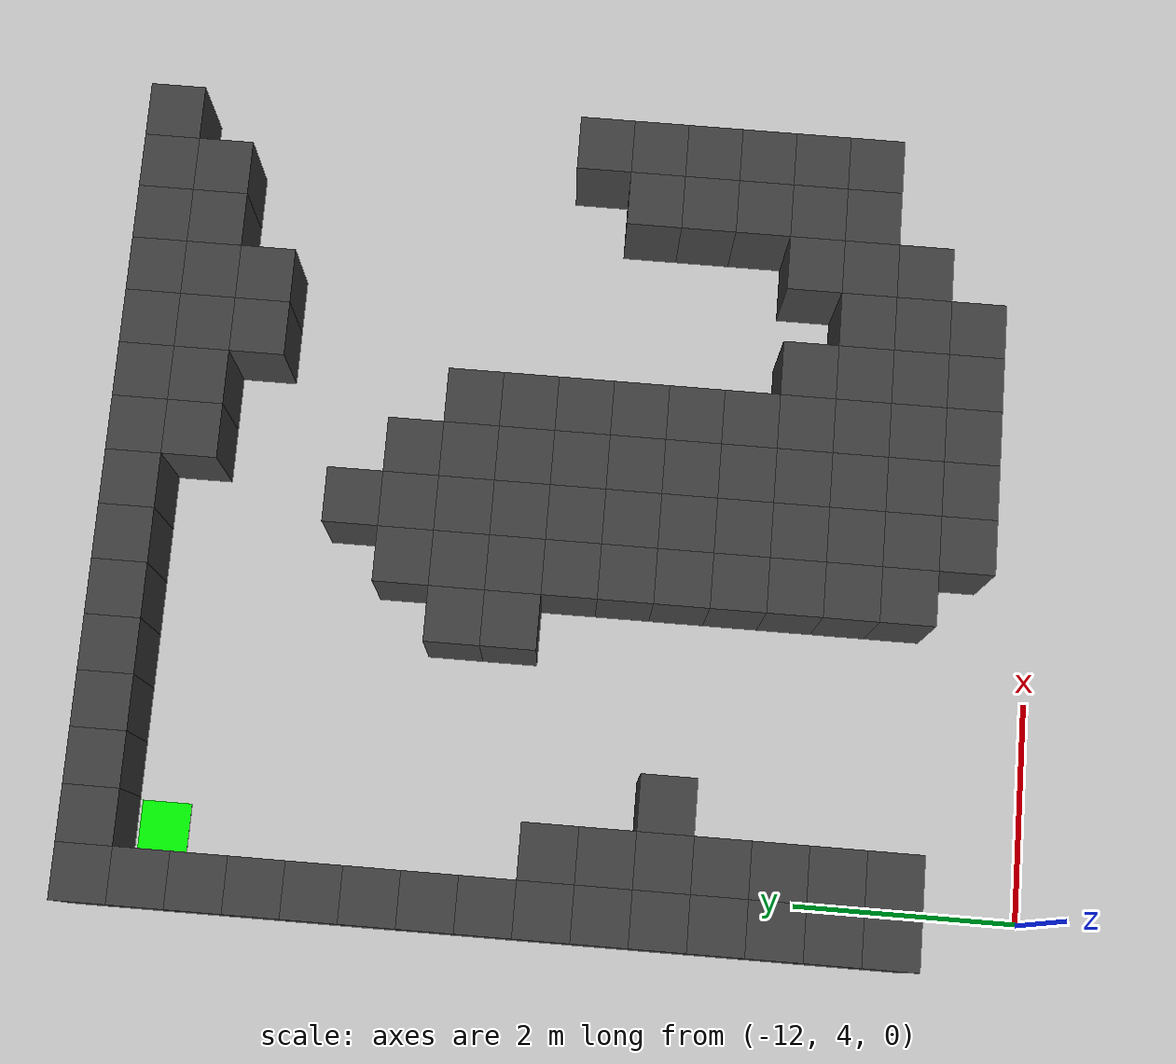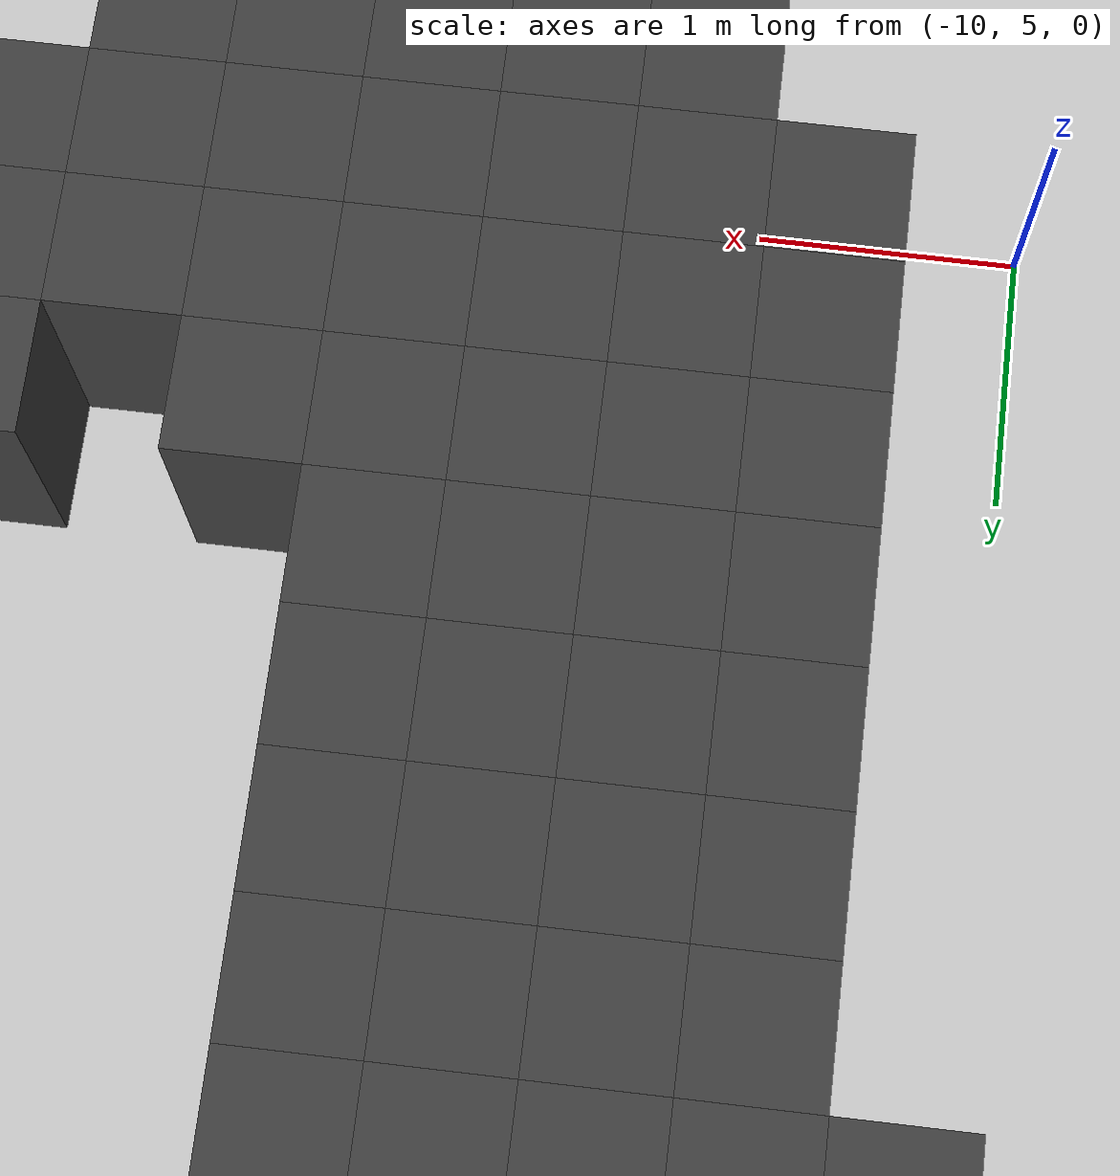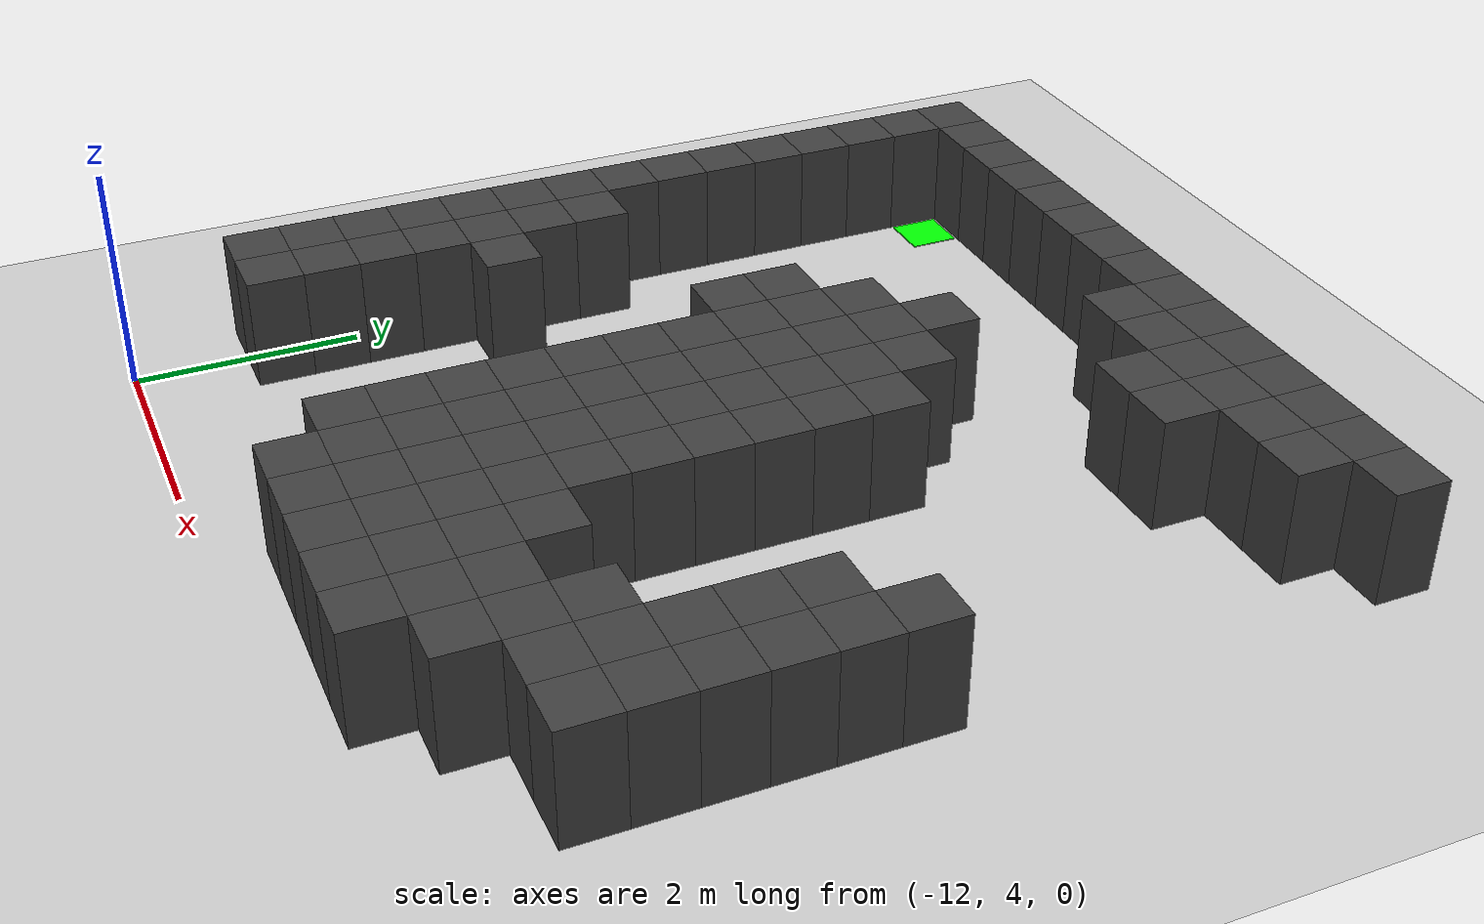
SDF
<sdf version="1.7">
 <world name="map_7219">
  <model name="ground_plane">
   <static>true</static>
   <link name="link">
    <collision name="collision">
     <geometry><plane><normal>0 0 1</normal><size>200 200</size></plane></geometry>
    </collision>
    <visual name="visual">
     <geometry><plane><normal>0 0 1</normal><size>200 200</size></plane></geometry>
     <material><ambient>0.8 0.8 0.8 1</ambient><diffuse>0.8 0.8 0.8 1</diffuse></material>
    </visual>
   </link>
  </model>
  <model name="maze_environment">
   <static>true</static>
   <link name="wall_0">
    <pose>-12.250 12.250 0.500 0 0 0</pose>
    <collision name="col"><geometry><box><size>0.5 0.5 1.0</size></box></geometry></collision>
    <visual name="vis">
     <geometry><box><size>0.5 0.5 1.0</size></box></geometry>
     <material><ambient>0.15 0.15 0.15 1</ambient><diffuse>0.25 0.25 0.25 1</diffuse></material>
    </visual>
   </link>
   <link name="wall_1">
    <pose>-11.750 12.250 0.500 0 0 0</pose>
    <collision name="col"><geometry><box><size>0.5 0.5 1.0</size></box></geometry></collision>
    <visual name="vis">
     <geometry><box><size>0.5 0.5 1.0</size></box></geometry>
     <material><ambient>0.15 0.15 0.15 1</ambient><diffuse>0.25 0.25 0.25 1</diffuse></material>
    </visual>
   </link>
   <link name="wall_2">
    <pose>-11.250 12.250 0.500 0 0 0</pose>
    <collision name="col"><geometry><box><size>0.5 0.5 1.0</size></box></geometry></collision>
    <visual name="vis">
     <geometry><box><size>0.5 0.5 1.0</size></box></geometry>
     <material><ambient>0.15 0.15 0.15 1</ambient><diffuse>0.25 0.25 0.25 1</diffuse></material>
    </visual>
   </link>
   <link name="wall_3">
    <pose>-10.750 12.250 0.500 0 0 0</pose>
    <collision name="col"><geometry><box><size>0.5 0.5 1.0</size></box></geometry></collision>
    <visual name="vis">
     <geometry><box><size>0.5 0.5 1.0</size></box></geometry>
     <material><ambient>0.15 0.15 0.15 1</ambient><diffuse>0.25 0.25 0.25 1</diffuse></material>
    </visual>
   </link>
   <link name="wall_4">
    <pose>-10.250 12.250 0.500 0 0 0</pose>
    <collision name="col"><geometry><box><size>0.5 0.5 1.0</size></box></geometry></collision>
    <visual name="vis">
     <geometry><box><size>0.5 0.5 1.0</size></box></geometry>
     <material><ambient>0.15 0.15 0.15 1</ambient><diffuse>0.25 0.25 0.25 1</diffuse></material>
    </visual>
   </link>
   <link name="wall_5">
    <pose>-9.750 12.250 0.500 0 0 0</pose>
    <collision name="col"><geometry><box><size>0.5 0.5 1.0</size></box></geometry></collision>
    <visual name="vis">
     <geometry><box><size>0.5 0.5 1.0</size></box></geometry>
     <material><ambient>0.15 0.15 0.15 1</ambient><diffuse>0.25 0.25 0.25 1</diffuse></material>
    </visual>
   </link>
   <link name="wall_6">
    <pose>-9.250 12.250 0.500 0 0 0</pose>
    <collision name="col"><geometry><box><size>0.5 0.5 1.0</size></box></geometry></collision>
    <visual name="vis">
     <geometry><box><size>0.5 0.5 1.0</size></box></geometry>
     <material><ambient>0.15 0.15 0.15 1</ambient><diffuse>0.25 0.25 0.25 1</diffuse></material>
    </visual>
   </link>
   <link name="wall_7">
    <pose>-8.750 12.250 0.500 0 0 0</pose>
    <collision name="col"><geometry><box><size>0.5 0.5 1.0</size></box></geometry></collision>
    <visual name="vis">
     <geometry><box><size>0.5 0.5 1.0</size></box></geometry>
     <material><ambient>0.15 0.15 0.15 1</ambient><diffuse>0.25 0.25 0.25 1</diffuse></material>
    </visual>
   </link>
   <link name="wall_8">
    <pose>-8.250 12.250 0.500 0 0 0</pose>
    <collision name="col"><geometry><box><size>0.5 0.5 1.0</size></box></geometry></collision>
    <visual name="vis">
     <geometry><box><size>0.5 0.5 1.0</size></box></geometry>
     <material><ambient>0.15 0.15 0.15 1</ambient><diffuse>0.25 0.25 0.25 1</diffuse></material>
    </visual>
   </link>
   <link name="wall_9">
    <pose>-7.750 12.250 0.500 0 0 0</pose>
    <collision name="col"><geometry><box><size>0.5 0.5 1.0</size></box></geometry></collision>
    <visual name="vis">
     <geometry><box><size>0.5 0.5 1.0</size></box></geometry>
     <material><ambient>0.15 0.15 0.15 1</ambient><diffuse>0.25 0.25 0.25 1</diffuse></material>
    </visual>
   </link>
   <link name="wall_10">
    <pose>-7.250 12.250 0.500 0 0 0</pose>
    <collision name="col"><geometry><box><size>0.5 0.5 1.0</size></box></geometry></collision>
    <visual name="vis">
     <geometry><box><size>0.5 0.5 1.0</size></box></geometry>
     <material><ambient>0.15 0.15 0.15 1</ambient><diffuse>0.25 0.25 0.25 1</diffuse></material>
    </visual>
   </link>
   <link name="wall_11">
    <pose>-6.750 12.250 0.500 0 0 0</pose>
    <collision name="col"><geometry><box><size>0.5 0.5 1.0</size></box></geometry></collision>
    <visual name="vis">
     <geometry><box><size>0.5 0.5 1.0</size></box></geometry>
     <material><ambient>0.15 0.15 0.15 1</ambient><diffuse>0.25 0.25 0.25 1</diffuse></material>
    </visual>
   </link>
   <link name="wall_12">
    <pose>-6.250 12.250 0.500 0 0 0</pose>
    <collision name="col"><geometry><box><size>0.5 0.5 1.0</size></box></geometry></collision>
    <visual name="vis">
     <geometry><box><size>0.5 0.5 1.0</size></box></geometry>
     <material><ambient>0.15 0.15 0.15 1</ambient><diffuse>0.25 0.25 0.25 1</diffuse></material>
    </visual>
   </link>
   <link name="wall_13">
    <pose>-5.750 12.250 0.500 0 0 0</pose>
    <collision name="col"><geometry><box><size>0.5 0.5 1.0</size></box></geometry></collision>
    <visual name="vis">
     <geometry><box><size>0.5 0.5 1.0</size></box></geometry>
     <material><ambient>0.15 0.15 0.15 1</ambient><diffuse>0.25 0.25 0.25 1</diffuse></material>
    </visual>
   </link>
   <link name="wall_14">
    <pose>-5.250 12.250 0.500 0 0 0</pose>
    <collision name="col"><geometry><box><size>0.5 0.5 1.0</size></box></geometry></collision>
    <visual name="vis">
     <geometry><box><size>0.5 0.5 1.0</size></box></geometry>
     <material><ambient>0.15 0.15 0.15 1</ambient><diffuse>0.25 0.25 0.25 1</diffuse></material>
    </visual>
   </link>
   <link name="wall_50">
    <pose>-12.250 11.750 0.500 0 0 0</pose>
    <collision name="col"><geometry><box><size>0.5 0.5 1.0</size></box></geometry></collision>
    <visual name="vis">
     <geometry><box><size>0.5 0.5 1.0</size></box></geometry>
     <material><ambient>0.15 0.15 0.15 1</ambient><diffuse>0.25 0.25 0.25 1</diffuse></material>
    </visual>
   </link>
   <link name="wall_51">
    <pose>-8.250 11.750 0.500 0 0 0</pose>
    <collision name="col"><geometry><box><size>0.5 0.5 1.0</size></box></geometry></collision>
    <visual name="vis">
     <geometry><box><size>0.5 0.5 1.0</size></box></geometry>
     <material><ambient>0.15 0.15 0.15 1</ambient><diffuse>0.25 0.25 0.25 1</diffuse></material>
    </visual>
   </link>
   <link name="wall_52">
    <pose>-7.750 11.750 0.500 0 0 0</pose>
    <collision name="col"><geometry><box><size>0.5 0.5 1.0</size></box></geometry></collision>
    <visual name="vis">
     <geometry><box><size>0.5 0.5 1.0</size></box></geometry>
     <material><ambient>0.15 0.15 0.15 1</ambient><diffuse>0.25 0.25 0.25 1</diffuse></material>
    </visual>
   </link>
   <link name="wall_53">
    <pose>-7.250 11.750 0.500 0 0 0</pose>
    <collision name="col"><geometry><box><size>0.5 0.5 1.0</size></box></geometry></collision>
    <visual name="vis">
     <geometry><box><size>0.5 0.5 1.0</size></box></geometry>
     <material><ambient>0.15 0.15 0.15 1</ambient><diffuse>0.25 0.25 0.25 1</diffuse></material>
    </visual>
   </link>
   <link name="wall_54">
    <pose>-6.750 11.750 0.500 0 0 0</pose>
    <collision name="col"><geometry><box><size>0.5 0.5 1.0</size></box></geometry></collision>
    <visual name="vis">
     <geometry><box><size>0.5 0.5 1.0</size></box></geometry>
     <material><ambient>0.15 0.15 0.15 1</ambient><diffuse>0.25 0.25 0.25 1</diffuse></material>
    </visual>
   </link>
   <link name="wall_55">
    <pose>-6.250 11.750 0.500 0 0 0</pose>
    <collision name="col"><geometry><box><size>0.5 0.5 1.0</size></box></geometry></collision>
    <visual name="vis">
     <geometry><box><size>0.5 0.5 1.0</size></box></geometry>
     <material><ambient>0.15 0.15 0.15 1</ambient><diffuse>0.25 0.25 0.25 1</diffuse></material>
    </visual>
   </link>
   <link name="wall_56">
    <pose>-5.750 11.750 0.500 0 0 0</pose>
    <collision name="col"><geometry><box><size>0.5 0.5 1.0</size></box></geometry></collision>
    <visual name="vis">
     <geometry><box><size>0.5 0.5 1.0</size></box></geometry>
     <material><ambient>0.15 0.15 0.15 1</ambient><diffuse>0.25 0.25 0.25 1</diffuse></material>
    </visual>
   </link>
   <link name="wall_70">
    <pose>-12.250 11.250 0.500 0 0 0</pose>
    <collision name="col"><geometry><box><size>0.5 0.5 1.0</size></box></geometry></collision>
    <visual name="vis">
     <geometry><box><size>0.5 0.5 1.0</size></box></geometry>
     <material><ambient>0.15 0.15 0.15 1</ambient><diffuse>0.25 0.25 0.25 1</diffuse></material>
    </visual>
   </link>
   <link name="wall_71">
    <pose>-7.250 11.250 0.500 0 0 0</pose>
    <collision name="col"><geometry><box><size>0.5 0.5 1.0</size></box></geometry></collision>
    <visual name="vis">
     <geometry><box><size>0.5 0.5 1.0</size></box></geometry>
     <material><ambient>0.15 0.15 0.15 1</ambient><diffuse>0.25 0.25 0.25 1</diffuse></material>
    </visual>
   </link>
   <link name="wall_72">
    <pose>-6.750 11.250 0.500 0 0 0</pose>
    <collision name="col"><geometry><box><size>0.5 0.5 1.0</size></box></geometry></collision>
    <visual name="vis">
     <geometry><box><size>0.5 0.5 1.0</size></box></geometry>
     <material><ambient>0.15 0.15 0.15 1</ambient><diffuse>0.25 0.25 0.25 1</diffuse></material>
    </visual>
   </link>
   <link name="wall_76">
    <pose>-12.250 10.750 0.500 0 0 0</pose>
    <collision name="col"><geometry><box><size>0.5 0.5 1.0</size></box></geometry></collision>
    <visual name="vis">
     <geometry><box><size>0.5 0.5 1.0</size></box></geometry>
     <material><ambient>0.15 0.15 0.15 1</ambient><diffuse>0.25 0.25 0.25 1</diffuse></material>
    </visual>
   </link>
   <link name="wall_78">
    <pose>-12.250 10.250 0.500 0 0 0</pose>
    <collision name="col"><geometry><box><size>0.5 0.5 1.0</size></box></geometry></collision>
    <visual name="vis">
     <geometry><box><size>0.5 0.5 1.0</size></box></geometry>
     <material><ambient>0.15 0.15 0.15 1</ambient><diffuse>0.25 0.25 0.25 1</diffuse></material>
    </visual>
   </link>
   <link name="wall_79">
    <pose>-8.750 10.250 0.500 0 0 0</pose>
    <collision name="col"><geometry><box><size>0.5 0.5 1.0</size></box></geometry></collision>
    <visual name="vis">
     <geometry><box><size>0.5 0.5 1.0</size></box></geometry>
     <material><ambient>0.15 0.15 0.15 1</ambient><diffuse>0.25 0.25 0.25 1</diffuse></material>
    </visual>
   </link>
   <link name="wall_81">
    <pose>-12.250 9.750 0.500 0 0 0</pose>
    <collision name="col"><geometry><box><size>0.5 0.5 1.0</size></box></geometry></collision>
    <visual name="vis">
     <geometry><box><size>0.5 0.5 1.0</size></box></geometry>
     <material><ambient>0.15 0.15 0.15 1</ambient><diffuse>0.25 0.25 0.25 1</diffuse></material>
    </visual>
   </link>
   <link name="wall_82">
    <pose>-9.250 9.750 0.500 0 0 0</pose>
    <collision name="col"><geometry><box><size>0.5 0.5 1.0</size></box></geometry></collision>
    <visual name="vis">
     <geometry><box><size>0.5 0.5 1.0</size></box></geometry>
     <material><ambient>0.15 0.15 0.15 1</ambient><diffuse>0.25 0.25 0.25 1</diffuse></material>
    </visual>
   </link>
   <link name="wall_83">
    <pose>-8.750 9.750 0.500 0 0 0</pose>
    <collision name="col"><geometry><box><size>0.5 0.5 1.0</size></box></geometry></collision>
    <visual name="vis">
     <geometry><box><size>0.5 0.5 1.0</size></box></geometry>
     <material><ambient>0.15 0.15 0.15 1</ambient><diffuse>0.25 0.25 0.25 1</diffuse></material>
    </visual>
   </link>
   <link name="wall_84">
    <pose>-8.250 9.750 0.500 0 0 0</pose>
    <collision name="col"><geometry><box><size>0.5 0.5 1.0</size></box></geometry></collision>
    <visual name="vis">
     <geometry><box><size>0.5 0.5 1.0</size></box></geometry>
     <material><ambient>0.15 0.15 0.15 1</ambient><diffuse>0.25 0.25 0.25 1</diffuse></material>
    </visual>
   </link>
   <link name="wall_87">
    <pose>-12.250 9.250 0.500 0 0 0</pose>
    <collision name="col"><geometry><box><size>0.5 0.5 1.0</size></box></geometry></collision>
    <visual name="vis">
     <geometry><box><size>0.5 0.5 1.0</size></box></geometry>
     <material><ambient>0.15 0.15 0.15 1</ambient><diffuse>0.25 0.25 0.25 1</diffuse></material>
    </visual>
   </link>
   <link name="wall_88">
    <pose>-9.750 9.250 0.500 0 0 0</pose>
    <collision name="col"><geometry><box><size>0.5 0.5 1.0</size></box></geometry></collision>
    <visual name="vis">
     <geometry><box><size>0.5 0.5 1.0</size></box></geometry>
     <material><ambient>0.15 0.15 0.15 1</ambient><diffuse>0.25 0.25 0.25 1</diffuse></material>
    </visual>
   </link>
   <link name="wall_89">
    <pose>-9.250 9.250 0.500 0 0 0</pose>
    <collision name="col"><geometry><box><size>0.5 0.5 1.0</size></box></geometry></collision>
    <visual name="vis">
     <geometry><box><size>0.5 0.5 1.0</size></box></geometry>
     <material><ambient>0.15 0.15 0.15 1</ambient><diffuse>0.25 0.25 0.25 1</diffuse></material>
    </visual>
   </link>
   <link name="wall_90">
    <pose>-8.750 9.250 0.500 0 0 0</pose>
    <collision name="col"><geometry><box><size>0.5 0.5 1.0</size></box></geometry></collision>
    <visual name="vis">
     <geometry><box><size>0.5 0.5 1.0</size></box></geometry>
     <material><ambient>0.15 0.15 0.15 1</ambient><diffuse>0.25 0.25 0.25 1</diffuse></material>
    </visual>
   </link>
   <link name="wall_91">
    <pose>-8.250 9.250 0.500 0 0 0</pose>
    <collision name="col"><geometry><box><size>0.5 0.5 1.0</size></box></geometry></collision>
    <visual name="vis">
     <geometry><box><size>0.5 0.5 1.0</size></box></geometry>
     <material><ambient>0.15 0.15 0.15 1</ambient><diffuse>0.25 0.25 0.25 1</diffuse></material>
    </visual>
   </link>
   <link name="wall_92">
    <pose>-7.750 9.250 0.500 0 0 0</pose>
    <collision name="col"><geometry><box><size>0.5 0.5 1.0</size></box></geometry></collision>
    <visual name="vis">
     <geometry><box><size>0.5 0.5 1.0</size></box></geometry>
     <material><ambient>0.15 0.15 0.15 1</ambient><diffuse>0.25 0.25 0.25 1</diffuse></material>
    </visual>
   </link>
   <link name="wall_96">
    <pose>-12.250 8.750 0.500 0 0 0</pose>
    <collision name="col"><geometry><box><size>0.5 0.5 1.0</size></box></geometry></collision>
    <visual name="vis">
     <geometry><box><size>0.5 0.5 1.0</size></box></geometry>
     <material><ambient>0.15 0.15 0.15 1</ambient><diffuse>0.25 0.25 0.25 1</diffuse></material>
    </visual>
   </link>
   <link name="wall_97">
    <pose>-9.750 8.750 0.500 0 0 0</pose>
    <collision name="col"><geometry><box><size>0.5 0.5 1.0</size></box></geometry></collision>
    <visual name="vis">
     <geometry><box><size>0.5 0.5 1.0</size></box></geometry>
     <material><ambient>0.15 0.15 0.15 1</ambient><diffuse>0.25 0.25 0.25 1</diffuse></material>
    </visual>
   </link>
   <link name="wall_98">
    <pose>-9.250 8.750 0.500 0 0 0</pose>
    <collision name="col"><geometry><box><size>0.5 0.5 1.0</size></box></geometry></collision>
    <visual name="vis">
     <geometry><box><size>0.5 0.5 1.0</size></box></geometry>
     <material><ambient>0.15 0.15 0.15 1</ambient><diffuse>0.25 0.25 0.25 1</diffuse></material>
    </visual>
   </link>
   <link name="wall_99">
    <pose>-8.750 8.750 0.500 0 0 0</pose>
    <collision name="col"><geometry><box><size>0.5 0.5 1.0</size></box></geometry></collision>
    <visual name="vis">
     <geometry><box><size>0.5 0.5 1.0</size></box></geometry>
     <material><ambient>0.15 0.15 0.15 1</ambient><diffuse>0.25 0.25 0.25 1</diffuse></material>
    </visual>
   </link>
   <link name="wall_100">
    <pose>-8.250 8.750 0.500 0 0 0</pose>
    <collision name="col"><geometry><box><size>0.5 0.5 1.0</size></box></geometry></collision>
    <visual name="vis">
     <geometry><box><size>0.5 0.5 1.0</size></box></geometry>
     <material><ambient>0.15 0.15 0.15 1</ambient><diffuse>0.25 0.25 0.25 1</diffuse></material>
    </visual>
   </link>
   <link name="wall_101">
    <pose>-7.750 8.750 0.500 0 0 0</pose>
    <collision name="col"><geometry><box><size>0.5 0.5 1.0</size></box></geometry></collision>
    <visual name="vis">
     <geometry><box><size>0.5 0.5 1.0</size></box></geometry>
     <material><ambient>0.15 0.15 0.15 1</ambient><diffuse>0.25 0.25 0.25 1</diffuse></material>
    </visual>
   </link>
   <link name="wall_107">
    <pose>-12.250 8.250 0.500 0 0 0</pose>
    <collision name="col"><geometry><box><size>0.5 0.5 1.0</size></box></geometry></collision>
    <visual name="vis">
     <geometry><box><size>0.5 0.5 1.0</size></box></geometry>
     <material><ambient>0.15 0.15 0.15 1</ambient><diffuse>0.25 0.25 0.25 1</diffuse></material>
    </visual>
   </link>
   <link name="wall_108">
    <pose>-11.750 8.250 0.500 0 0 0</pose>
    <collision name="col"><geometry><box><size>0.5 0.5 1.0</size></box></geometry></collision>
    <visual name="vis">
     <geometry><box><size>0.5 0.5 1.0</size></box></geometry>
     <material><ambient>0.15 0.15 0.15 1</ambient><diffuse>0.25 0.25 0.25 1</diffuse></material>
    </visual>
   </link>
   <link name="wall_109">
    <pose>-9.250 8.250 0.500 0 0 0</pose>
    <collision name="col"><geometry><box><size>0.5 0.5 1.0</size></box></geometry></collision>
    <visual name="vis">
     <geometry><box><size>0.5 0.5 1.0</size></box></geometry>
     <material><ambient>0.15 0.15 0.15 1</ambient><diffuse>0.25 0.25 0.25 1</diffuse></material>
    </visual>
   </link>
   <link name="wall_110">
    <pose>-8.750 8.250 0.500 0 0 0</pose>
    <collision name="col"><geometry><box><size>0.5 0.5 1.0</size></box></geometry></collision>
    <visual name="vis">
     <geometry><box><size>0.5 0.5 1.0</size></box></geometry>
     <material><ambient>0.15 0.15 0.15 1</ambient><diffuse>0.25 0.25 0.25 1</diffuse></material>
    </visual>
   </link>
   <link name="wall_111">
    <pose>-8.250 8.250 0.500 0 0 0</pose>
    <collision name="col"><geometry><box><size>0.5 0.5 1.0</size></box></geometry></collision>
    <visual name="vis">
     <geometry><box><size>0.5 0.5 1.0</size></box></geometry>
     <material><ambient>0.15 0.15 0.15 1</ambient><diffuse>0.25 0.25 0.25 1</diffuse></material>
    </visual>
   </link>
   <link name="wall_112">
    <pose>-7.750 8.250 0.500 0 0 0</pose>
    <collision name="col"><geometry><box><size>0.5 0.5 1.0</size></box></geometry></collision>
    <visual name="vis">
     <geometry><box><size>0.5 0.5 1.0</size></box></geometry>
     <material><ambient>0.15 0.15 0.15 1</ambient><diffuse>0.25 0.25 0.25 1</diffuse></material>
    </visual>
   </link>
   <link name="wall_113">
    <pose>-5.250 8.250 0.500 0 0 0</pose>
    <collision name="col"><geometry><box><size>0.5 0.5 1.0</size></box></geometry></collision>
    <visual name="vis">
     <geometry><box><size>0.5 0.5 1.0</size></box></geometry>
     <material><ambient>0.15 0.15 0.15 1</ambient><diffuse>0.25 0.25 0.25 1</diffuse></material>
    </visual>
   </link>
   <link name="wall_119">
    <pose>-12.250 7.750 0.500 0 0 0</pose>
    <collision name="col"><geometry><box><size>0.5 0.5 1.0</size></box></geometry></collision>
    <visual name="vis">
     <geometry><box><size>0.5 0.5 1.0</size></box></geometry>
     <material><ambient>0.15 0.15 0.15 1</ambient><diffuse>0.25 0.25 0.25 1</diffuse></material>
    </visual>
   </link>
   <link name="wall_120">
    <pose>-11.750 7.750 0.500 0 0 0</pose>
    <collision name="col"><geometry><box><size>0.5 0.5 1.0</size></box></geometry></collision>
    <visual name="vis">
     <geometry><box><size>0.5 0.5 1.0</size></box></geometry>
     <material><ambient>0.15 0.15 0.15 1</ambient><diffuse>0.25 0.25 0.25 1</diffuse></material>
    </visual>
   </link>
   <link name="wall_121">
    <pose>-9.250 7.750 0.500 0 0 0</pose>
    <collision name="col"><geometry><box><size>0.5 0.5 1.0</size></box></geometry></collision>
    <visual name="vis">
     <geometry><box><size>0.5 0.5 1.0</size></box></geometry>
     <material><ambient>0.15 0.15 0.15 1</ambient><diffuse>0.25 0.25 0.25 1</diffuse></material>
    </visual>
   </link>
   <link name="wall_122">
    <pose>-8.750 7.750 0.500 0 0 0</pose>
    <collision name="col"><geometry><box><size>0.5 0.5 1.0</size></box></geometry></collision>
    <visual name="vis">
     <geometry><box><size>0.5 0.5 1.0</size></box></geometry>
     <material><ambient>0.15 0.15 0.15 1</ambient><diffuse>0.25 0.25 0.25 1</diffuse></material>
    </visual>
   </link>
   <link name="wall_123">
    <pose>-8.250 7.750 0.500 0 0 0</pose>
    <collision name="col"><geometry><box><size>0.5 0.5 1.0</size></box></geometry></collision>
    <visual name="vis">
     <geometry><box><size>0.5 0.5 1.0</size></box></geometry>
     <material><ambient>0.15 0.15 0.15 1</ambient><diffuse>0.25 0.25 0.25 1</diffuse></material>
    </visual>
   </link>
   <link name="wall_124">
    <pose>-7.750 7.750 0.500 0 0 0</pose>
    <collision name="col"><geometry><box><size>0.5 0.5 1.0</size></box></geometry></collision>
    <visual name="vis">
     <geometry><box><size>0.5 0.5 1.0</size></box></geometry>
     <material><ambient>0.15 0.15 0.15 1</ambient><diffuse>0.25 0.25 0.25 1</diffuse></material>
    </visual>
   </link>
   <link name="wall_125">
    <pose>-5.750 7.750 0.500 0 0 0</pose>
    <collision name="col"><geometry><box><size>0.5 0.5 1.0</size></box></geometry></collision>
    <visual name="vis">
     <geometry><box><size>0.5 0.5 1.0</size></box></geometry>
     <material><ambient>0.15 0.15 0.15 1</ambient><diffuse>0.25 0.25 0.25 1</diffuse></material>
    </visual>
   </link>
   <link name="wall_126">
    <pose>-5.250 7.750 0.500 0 0 0</pose>
    <collision name="col"><geometry><box><size>0.5 0.5 1.0</size></box></geometry></collision>
    <visual name="vis">
     <geometry><box><size>0.5 0.5 1.0</size></box></geometry>
     <material><ambient>0.15 0.15 0.15 1</ambient><diffuse>0.25 0.25 0.25 1</diffuse></material>
    </visual>
   </link>
   <link name="wall_130">
    <pose>-12.250 7.250 0.500 0 0 0</pose>
    <collision name="col"><geometry><box><size>0.5 0.5 1.0</size></box></geometry></collision>
    <visual name="vis">
     <geometry><box><size>0.5 0.5 1.0</size></box></geometry>
     <material><ambient>0.15 0.15 0.15 1</ambient><diffuse>0.25 0.25 0.25 1</diffuse></material>
    </visual>
   </link>
   <link name="wall_131">
    <pose>-11.750 7.250 0.500 0 0 0</pose>
    <collision name="col"><geometry><box><size>0.5 0.5 1.0</size></box></geometry></collision>
    <visual name="vis">
     <geometry><box><size>0.5 0.5 1.0</size></box></geometry>
     <material><ambient>0.15 0.15 0.15 1</ambient><diffuse>0.25 0.25 0.25 1</diffuse></material>
    </visual>
   </link>
   <link name="wall_132">
    <pose>-11.250 7.250 0.500 0 0 0</pose>
    <collision name="col"><geometry><box><size>0.5 0.5 1.0</size></box></geometry></collision>
    <visual name="vis">
     <geometry><box><size>0.5 0.5 1.0</size></box></geometry>
     <material><ambient>0.15 0.15 0.15 1</ambient><diffuse>0.25 0.25 0.25 1</diffuse></material>
    </visual>
   </link>
   <link name="wall_133">
    <pose>-9.250 7.250 0.500 0 0 0</pose>
    <collision name="col"><geometry><box><size>0.5 0.5 1.0</size></box></geometry></collision>
    <visual name="vis">
     <geometry><box><size>0.5 0.5 1.0</size></box></geometry>
     <material><ambient>0.15 0.15 0.15 1</ambient><diffuse>0.25 0.25 0.25 1</diffuse></material>
    </visual>
   </link>
   <link name="wall_134">
    <pose>-8.750 7.250 0.500 0 0 0</pose>
    <collision name="col"><geometry><box><size>0.5 0.5 1.0</size></box></geometry></collision>
    <visual name="vis">
     <geometry><box><size>0.5 0.5 1.0</size></box></geometry>
     <material><ambient>0.15 0.15 0.15 1</ambient><diffuse>0.25 0.25 0.25 1</diffuse></material>
    </visual>
   </link>
   <link name="wall_135">
    <pose>-8.250 7.250 0.500 0 0 0</pose>
    <collision name="col"><geometry><box><size>0.5 0.5 1.0</size></box></geometry></collision>
    <visual name="vis">
     <geometry><box><size>0.5 0.5 1.0</size></box></geometry>
     <material><ambient>0.15 0.15 0.15 1</ambient><diffuse>0.25 0.25 0.25 1</diffuse></material>
    </visual>
   </link>
   <link name="wall_136">
    <pose>-7.750 7.250 0.500 0 0 0</pose>
    <collision name="col"><geometry><box><size>0.5 0.5 1.0</size></box></geometry></collision>
    <visual name="vis">
     <geometry><box><size>0.5 0.5 1.0</size></box></geometry>
     <material><ambient>0.15 0.15 0.15 1</ambient><diffuse>0.25 0.25 0.25 1</diffuse></material>
    </visual>
   </link>
   <link name="wall_137">
    <pose>-5.750 7.250 0.500 0 0 0</pose>
    <collision name="col"><geometry><box><size>0.5 0.5 1.0</size></box></geometry></collision>
    <visual name="vis">
     <geometry><box><size>0.5 0.5 1.0</size></box></geometry>
     <material><ambient>0.15 0.15 0.15 1</ambient><diffuse>0.25 0.25 0.25 1</diffuse></material>
    </visual>
   </link>
   <link name="wall_138">
    <pose>-5.250 7.250 0.500 0 0 0</pose>
    <collision name="col"><geometry><box><size>0.5 0.5 1.0</size></box></geometry></collision>
    <visual name="vis">
     <geometry><box><size>0.5 0.5 1.0</size></box></geometry>
     <material><ambient>0.15 0.15 0.15 1</ambient><diffuse>0.25 0.25 0.25 1</diffuse></material>
    </visual>
   </link>
   <link name="wall_142">
    <pose>-12.250 6.750 0.500 0 0 0</pose>
    <collision name="col"><geometry><box><size>0.5 0.5 1.0</size></box></geometry></collision>
    <visual name="vis">
     <geometry><box><size>0.5 0.5 1.0</size></box></geometry>
     <material><ambient>0.15 0.15 0.15 1</ambient><diffuse>0.25 0.25 0.25 1</diffuse></material>
    </visual>
   </link>
   <link name="wall_143">
    <pose>-11.750 6.750 0.500 0 0 0</pose>
    <collision name="col"><geometry><box><size>0.5 0.5 1.0</size></box></geometry></collision>
    <visual name="vis">
     <geometry><box><size>0.5 0.5 1.0</size></box></geometry>
     <material><ambient>0.15 0.15 0.15 1</ambient><diffuse>0.25 0.25 0.25 1</diffuse></material>
    </visual>
   </link>
   <link name="wall_144">
    <pose>-9.250 6.750 0.500 0 0 0</pose>
    <collision name="col"><geometry><box><size>0.5 0.5 1.0</size></box></geometry></collision>
    <visual name="vis">
     <geometry><box><size>0.5 0.5 1.0</size></box></geometry>
     <material><ambient>0.15 0.15 0.15 1</ambient><diffuse>0.25 0.25 0.25 1</diffuse></material>
    </visual>
   </link>
   <link name="wall_145">
    <pose>-8.750 6.750 0.500 0 0 0</pose>
    <collision name="col"><geometry><box><size>0.5 0.5 1.0</size></box></geometry></collision>
    <visual name="vis">
     <geometry><box><size>0.5 0.5 1.0</size></box></geometry>
     <material><ambient>0.15 0.15 0.15 1</ambient><diffuse>0.25 0.25 0.25 1</diffuse></material>
    </visual>
   </link>
   <link name="wall_146">
    <pose>-8.250 6.750 0.500 0 0 0</pose>
    <collision name="col"><geometry><box><size>0.5 0.5 1.0</size></box></geometry></collision>
    <visual name="vis">
     <geometry><box><size>0.5 0.5 1.0</size></box></geometry>
     <material><ambient>0.15 0.15 0.15 1</ambient><diffuse>0.25 0.25 0.25 1</diffuse></material>
    </visual>
   </link>
   <link name="wall_147">
    <pose>-7.750 6.750 0.500 0 0 0</pose>
    <collision name="col"><geometry><box><size>0.5 0.5 1.0</size></box></geometry></collision>
    <visual name="vis">
     <geometry><box><size>0.5 0.5 1.0</size></box></geometry>
     <material><ambient>0.15 0.15 0.15 1</ambient><diffuse>0.25 0.25 0.25 1</diffuse></material>
    </visual>
   </link>
   <link name="wall_148">
    <pose>-5.750 6.750 0.500 0 0 0</pose>
    <collision name="col"><geometry><box><size>0.5 0.5 1.0</size></box></geometry></collision>
    <visual name="vis">
     <geometry><box><size>0.5 0.5 1.0</size></box></geometry>
     <material><ambient>0.15 0.15 0.15 1</ambient><diffuse>0.25 0.25 0.25 1</diffuse></material>
    </visual>
   </link>
   <link name="wall_149">
    <pose>-5.250 6.750 0.500 0 0 0</pose>
    <collision name="col"><geometry><box><size>0.5 0.5 1.0</size></box></geometry></collision>
    <visual name="vis">
     <geometry><box><size>0.5 0.5 1.0</size></box></geometry>
     <material><ambient>0.15 0.15 0.15 1</ambient><diffuse>0.25 0.25 0.25 1</diffuse></material>
    </visual>
   </link>
   <link name="wall_153">
    <pose>-12.250 6.250 0.500 0 0 0</pose>
    <collision name="col"><geometry><box><size>0.5 0.5 1.0</size></box></geometry></collision>
    <visual name="vis">
     <geometry><box><size>0.5 0.5 1.0</size></box></geometry>
     <material><ambient>0.15 0.15 0.15 1</ambient><diffuse>0.25 0.25 0.25 1</diffuse></material>
    </visual>
   </link>
   <link name="wall_154">
    <pose>-11.750 6.250 0.500 0 0 0</pose>
    <collision name="col"><geometry><box><size>0.5 0.5 1.0</size></box></geometry></collision>
    <visual name="vis">
     <geometry><box><size>0.5 0.5 1.0</size></box></geometry>
     <material><ambient>0.15 0.15 0.15 1</ambient><diffuse>0.25 0.25 0.25 1</diffuse></material>
    </visual>
   </link>
   <link name="wall_155">
    <pose>-9.250 6.250 0.500 0 0 0</pose>
    <collision name="col"><geometry><box><size>0.5 0.5 1.0</size></box></geometry></collision>
    <visual name="vis">
     <geometry><box><size>0.5 0.5 1.0</size></box></geometry>
     <material><ambient>0.15 0.15 0.15 1</ambient><diffuse>0.25 0.25 0.25 1</diffuse></material>
    </visual>
   </link>
   <link name="wall_156">
    <pose>-8.750 6.250 0.500 0 0 0</pose>
    <collision name="col"><geometry><box><size>0.5 0.5 1.0</size></box></geometry></collision>
    <visual name="vis">
     <geometry><box><size>0.5 0.5 1.0</size></box></geometry>
     <material><ambient>0.15 0.15 0.15 1</ambient><diffuse>0.25 0.25 0.25 1</diffuse></material>
    </visual>
   </link>
   <link name="wall_157">
    <pose>-8.250 6.250 0.500 0 0 0</pose>
    <collision name="col"><geometry><box><size>0.5 0.5 1.0</size></box></geometry></collision>
    <visual name="vis">
     <geometry><box><size>0.5 0.5 1.0</size></box></geometry>
     <material><ambient>0.15 0.15 0.15 1</ambient><diffuse>0.25 0.25 0.25 1</diffuse></material>
    </visual>
   </link>
   <link name="wall_158">
    <pose>-7.750 6.250 0.500 0 0 0</pose>
    <collision name="col"><geometry><box><size>0.5 0.5 1.0</size></box></geometry></collision>
    <visual name="vis">
     <geometry><box><size>0.5 0.5 1.0</size></box></geometry>
     <material><ambient>0.15 0.15 0.15 1</ambient><diffuse>0.25 0.25 0.25 1</diffuse></material>
    </visual>
   </link>
   <link name="wall_159">
    <pose>-7.250 6.250 0.500 0 0 0</pose>
    <collision name="col"><geometry><box><size>0.5 0.5 1.0</size></box></geometry></collision>
    <visual name="vis">
     <geometry><box><size>0.5 0.5 1.0</size></box></geometry>
     <material><ambient>0.15 0.15 0.15 1</ambient><diffuse>0.25 0.25 0.25 1</diffuse></material>
    </visual>
   </link>
   <link name="wall_160">
    <pose>-6.250 6.250 0.500 0 0 0</pose>
    <collision name="col"><geometry><box><size>0.5 0.5 1.0</size></box></geometry></collision>
    <visual name="vis">
     <geometry><box><size>0.5 0.5 1.0</size></box></geometry>
     <material><ambient>0.15 0.15 0.15 1</ambient><diffuse>0.25 0.25 0.25 1</diffuse></material>
    </visual>
   </link>
   <link name="wall_161">
    <pose>-5.750 6.250 0.500 0 0 0</pose>
    <collision name="col"><geometry><box><size>0.5 0.5 1.0</size></box></geometry></collision>
    <visual name="vis">
     <geometry><box><size>0.5 0.5 1.0</size></box></geometry>
     <material><ambient>0.15 0.15 0.15 1</ambient><diffuse>0.25 0.25 0.25 1</diffuse></material>
    </visual>
   </link>
   <link name="wall_162">
    <pose>-5.250 6.250 0.500 0 0 0</pose>
    <collision name="col"><geometry><box><size>0.5 0.5 1.0</size></box></geometry></collision>
    <visual name="vis">
     <geometry><box><size>0.5 0.5 1.0</size></box></geometry>
     <material><ambient>0.15 0.15 0.15 1</ambient><diffuse>0.25 0.25 0.25 1</diffuse></material>
    </visual>
   </link>
   <link name="wall_166">
    <pose>-12.250 5.750 0.500 0 0 0</pose>
    <collision name="col"><geometry><box><size>0.5 0.5 1.0</size></box></geometry></collision>
    <visual name="vis">
     <geometry><box><size>0.5 0.5 1.0</size></box></geometry>
     <material><ambient>0.15 0.15 0.15 1</ambient><diffuse>0.25 0.25 0.25 1</diffuse></material>
    </visual>
   </link>
   <link name="wall_167">
    <pose>-11.750 5.750 0.500 0 0 0</pose>
    <collision name="col"><geometry><box><size>0.5 0.5 1.0</size></box></geometry></collision>
    <visual name="vis">
     <geometry><box><size>0.5 0.5 1.0</size></box></geometry>
     <material><ambient>0.15 0.15 0.15 1</ambient><diffuse>0.25 0.25 0.25 1</diffuse></material>
    </visual>
   </link>
   <link name="wall_168">
    <pose>-9.250 5.750 0.500 0 0 0</pose>
    <collision name="col"><geometry><box><size>0.5 0.5 1.0</size></box></geometry></collision>
    <visual name="vis">
     <geometry><box><size>0.5 0.5 1.0</size></box></geometry>
     <material><ambient>0.15 0.15 0.15 1</ambient><diffuse>0.25 0.25 0.25 1</diffuse></material>
    </visual>
   </link>
   <link name="wall_169">
    <pose>-8.750 5.750 0.500 0 0 0</pose>
    <collision name="col"><geometry><box><size>0.5 0.5 1.0</size></box></geometry></collision>
    <visual name="vis">
     <geometry><box><size>0.5 0.5 1.0</size></box></geometry>
     <material><ambient>0.15 0.15 0.15 1</ambient><diffuse>0.25 0.25 0.25 1</diffuse></material>
    </visual>
   </link>
   <link name="wall_170">
    <pose>-8.250 5.750 0.500 0 0 0</pose>
    <collision name="col"><geometry><box><size>0.5 0.5 1.0</size></box></geometry></collision>
    <visual name="vis">
     <geometry><box><size>0.5 0.5 1.0</size></box></geometry>
     <material><ambient>0.15 0.15 0.15 1</ambient><diffuse>0.25 0.25 0.25 1</diffuse></material>
    </visual>
   </link>
   <link name="wall_171">
    <pose>-7.750 5.750 0.500 0 0 0</pose>
    <collision name="col"><geometry><box><size>0.5 0.5 1.0</size></box></geometry></collision>
    <visual name="vis">
     <geometry><box><size>0.5 0.5 1.0</size></box></geometry>
     <material><ambient>0.15 0.15 0.15 1</ambient><diffuse>0.25 0.25 0.25 1</diffuse></material>
    </visual>
   </link>
   <link name="wall_172">
    <pose>-7.250 5.750 0.500 0 0 0</pose>
    <collision name="col"><geometry><box><size>0.5 0.5 1.0</size></box></geometry></collision>
    <visual name="vis">
     <geometry><box><size>0.5 0.5 1.0</size></box></geometry>
     <material><ambient>0.15 0.15 0.15 1</ambient><diffuse>0.25 0.25 0.25 1</diffuse></material>
    </visual>
   </link>
   <link name="wall_173">
    <pose>-6.750 5.750 0.500 0 0 0</pose>
    <collision name="col"><geometry><box><size>0.5 0.5 1.0</size></box></geometry></collision>
    <visual name="vis">
     <geometry><box><size>0.5 0.5 1.0</size></box></geometry>
     <material><ambient>0.15 0.15 0.15 1</ambient><diffuse>0.25 0.25 0.25 1</diffuse></material>
    </visual>
   </link>
   <link name="wall_174">
    <pose>-6.250 5.750 0.500 0 0 0</pose>
    <collision name="col"><geometry><box><size>0.5 0.5 1.0</size></box></geometry></collision>
    <visual name="vis">
     <geometry><box><size>0.5 0.5 1.0</size></box></geometry>
     <material><ambient>0.15 0.15 0.15 1</ambient><diffuse>0.25 0.25 0.25 1</diffuse></material>
    </visual>
   </link>
   <link name="wall_175">
    <pose>-5.750 5.750 0.500 0 0 0</pose>
    <collision name="col"><geometry><box><size>0.5 0.5 1.0</size></box></geometry></collision>
    <visual name="vis">
     <geometry><box><size>0.5 0.5 1.0</size></box></geometry>
     <material><ambient>0.15 0.15 0.15 1</ambient><diffuse>0.25 0.25 0.25 1</diffuse></material>
    </visual>
   </link>
   <link name="wall_176">
    <pose>-5.250 5.750 0.500 0 0 0</pose>
    <collision name="col"><geometry><box><size>0.5 0.5 1.0</size></box></geometry></collision>
    <visual name="vis">
     <geometry><box><size>0.5 0.5 1.0</size></box></geometry>
     <material><ambient>0.15 0.15 0.15 1</ambient><diffuse>0.25 0.25 0.25 1</diffuse></material>
    </visual>
   </link>
   <link name="wall_181">
    <pose>-12.250 5.250 0.500 0 0 0</pose>
    <collision name="col"><geometry><box><size>0.5 0.5 1.0</size></box></geometry></collision>
    <visual name="vis">
     <geometry><box><size>0.5 0.5 1.0</size></box></geometry>
     <material><ambient>0.15 0.15 0.15 1</ambient><diffuse>0.25 0.25 0.25 1</diffuse></material>
    </visual>
   </link>
   <link name="wall_182">
    <pose>-11.750 5.250 0.500 0 0 0</pose>
    <collision name="col"><geometry><box><size>0.5 0.5 1.0</size></box></geometry></collision>
    <visual name="vis">
     <geometry><box><size>0.5 0.5 1.0</size></box></geometry>
     <material><ambient>0.15 0.15 0.15 1</ambient><diffuse>0.25 0.25 0.25 1</diffuse></material>
    </visual>
   </link>
   <link name="wall_183">
    <pose>-9.250 5.250 0.500 0 0 0</pose>
    <collision name="col"><geometry><box><size>0.5 0.5 1.0</size></box></geometry></collision>
    <visual name="vis">
     <geometry><box><size>0.5 0.5 1.0</size></box></geometry>
     <material><ambient>0.15 0.15 0.15 1</ambient><diffuse>0.25 0.25 0.25 1</diffuse></material>
    </visual>
   </link>
   <link name="wall_184">
    <pose>-8.750 5.250 0.500 0 0 0</pose>
    <collision name="col"><geometry><box><size>0.5 0.5 1.0</size></box></geometry></collision>
    <visual name="vis">
     <geometry><box><size>0.5 0.5 1.0</size></box></geometry>
     <material><ambient>0.15 0.15 0.15 1</ambient><diffuse>0.25 0.25 0.25 1</diffuse></material>
    </visual>
   </link>
   <link name="wall_185">
    <pose>-8.250 5.250 0.500 0 0 0</pose>
    <collision name="col"><geometry><box><size>0.5 0.5 1.0</size></box></geometry></collision>
    <visual name="vis">
     <geometry><box><size>0.5 0.5 1.0</size></box></geometry>
     <material><ambient>0.15 0.15 0.15 1</ambient><diffuse>0.25 0.25 0.25 1</diffuse></material>
    </visual>
   </link>
   <link name="wall_186">
    <pose>-7.750 5.250 0.500 0 0 0</pose>
    <collision name="col"><geometry><box><size>0.5 0.5 1.0</size></box></geometry></collision>
    <visual name="vis">
     <geometry><box><size>0.5 0.5 1.0</size></box></geometry>
     <material><ambient>0.15 0.15 0.15 1</ambient><diffuse>0.25 0.25 0.25 1</diffuse></material>
    </visual>
   </link>
   <link name="wall_187">
    <pose>-7.250 5.250 0.500 0 0 0</pose>
    <collision name="col"><geometry><box><size>0.5 0.5 1.0</size></box></geometry></collision>
    <visual name="vis">
     <geometry><box><size>0.5 0.5 1.0</size></box></geometry>
     <material><ambient>0.15 0.15 0.15 1</ambient><diffuse>0.25 0.25 0.25 1</diffuse></material>
    </visual>
   </link>
   <link name="wall_188">
    <pose>-6.750 5.250 0.500 0 0 0</pose>
    <collision name="col"><geometry><box><size>0.5 0.5 1.0</size></box></geometry></collision>
    <visual name="vis">
     <geometry><box><size>0.5 0.5 1.0</size></box></geometry>
     <material><ambient>0.15 0.15 0.15 1</ambient><diffuse>0.25 0.25 0.25 1</diffuse></material>
    </visual>
   </link>
   <link name="wall_189">
    <pose>-6.250 5.250 0.500 0 0 0</pose>
    <collision name="col"><geometry><box><size>0.5 0.5 1.0</size></box></geometry></collision>
    <visual name="vis">
     <geometry><box><size>0.5 0.5 1.0</size></box></geometry>
     <material><ambient>0.15 0.15 0.15 1</ambient><diffuse>0.25 0.25 0.25 1</diffuse></material>
    </visual>
   </link>
   <link name="wall_201">
    <pose>-8.750 4.750 0.500 0 0 0</pose>
    <collision name="col"><geometry><box><size>0.5 0.5 1.0</size></box></geometry></collision>
    <visual name="vis">
     <geometry><box><size>0.5 0.5 1.0</size></box></geometry>
     <material><ambient>0.15 0.15 0.15 1</ambient><diffuse>0.25 0.25 0.25 1</diffuse></material>
    </visual>
   </link>
   <link name="wall_202">
    <pose>-8.250 4.750 0.500 0 0 0</pose>
    <collision name="col"><geometry><box><size>0.5 0.5 1.0</size></box></geometry></collision>
    <visual name="vis">
     <geometry><box><size>0.5 0.5 1.0</size></box></geometry>
     <material><ambient>0.15 0.15 0.15 1</ambient><diffuse>0.25 0.25 0.25 1</diffuse></material>
    </visual>
   </link>
   <link name="wall_203">
    <pose>-7.750 4.750 0.500 0 0 0</pose>
    <collision name="col"><geometry><box><size>0.5 0.5 1.0</size></box></geometry></collision>
    <visual name="vis">
     <geometry><box><size>0.5 0.5 1.0</size></box></geometry>
     <material><ambient>0.15 0.15 0.15 1</ambient><diffuse>0.25 0.25 0.25 1</diffuse></material>
    </visual>
   </link>
   <link name="wall_204">
    <pose>-7.250 4.750 0.500 0 0 0</pose>
    <collision name="col"><geometry><box><size>0.5 0.5 1.0</size></box></geometry></collision>
    <visual name="vis">
     <geometry><box><size>0.5 0.5 1.0</size></box></geometry>
     <material><ambient>0.15 0.15 0.15 1</ambient><diffuse>0.25 0.25 0.25 1</diffuse></material>
    </visual>
   </link>
   <link name="wall_205">
    <pose>-6.750 4.750 0.500 0 0 0</pose>
    <collision name="col"><geometry><box><size>0.5 0.5 1.0</size></box></geometry></collision>
    <visual name="vis">
     <geometry><box><size>0.5 0.5 1.0</size></box></geometry>
     <material><ambient>0.15 0.15 0.15 1</ambient><diffuse>0.25 0.25 0.25 1</diffuse></material>
    </visual>
   </link>
   <link name="start_zone">
    <pose>-11.750 11.750 0.005 0 0 0</pose>
    <visual name="vis">
     <geometry><box><size>0.45 0.45 0.01</size></box></geometry>
     <material>
      <ambient>0.0 1.0 0.0 1</ambient>
      <diffuse>0.0 1.0 0.0 1</diffuse>
      <emissive>0.00 0.60 0.00 1</emissive>
     </material>
    </visual>
   </link>
  </model>
 </world>
</sdf>
